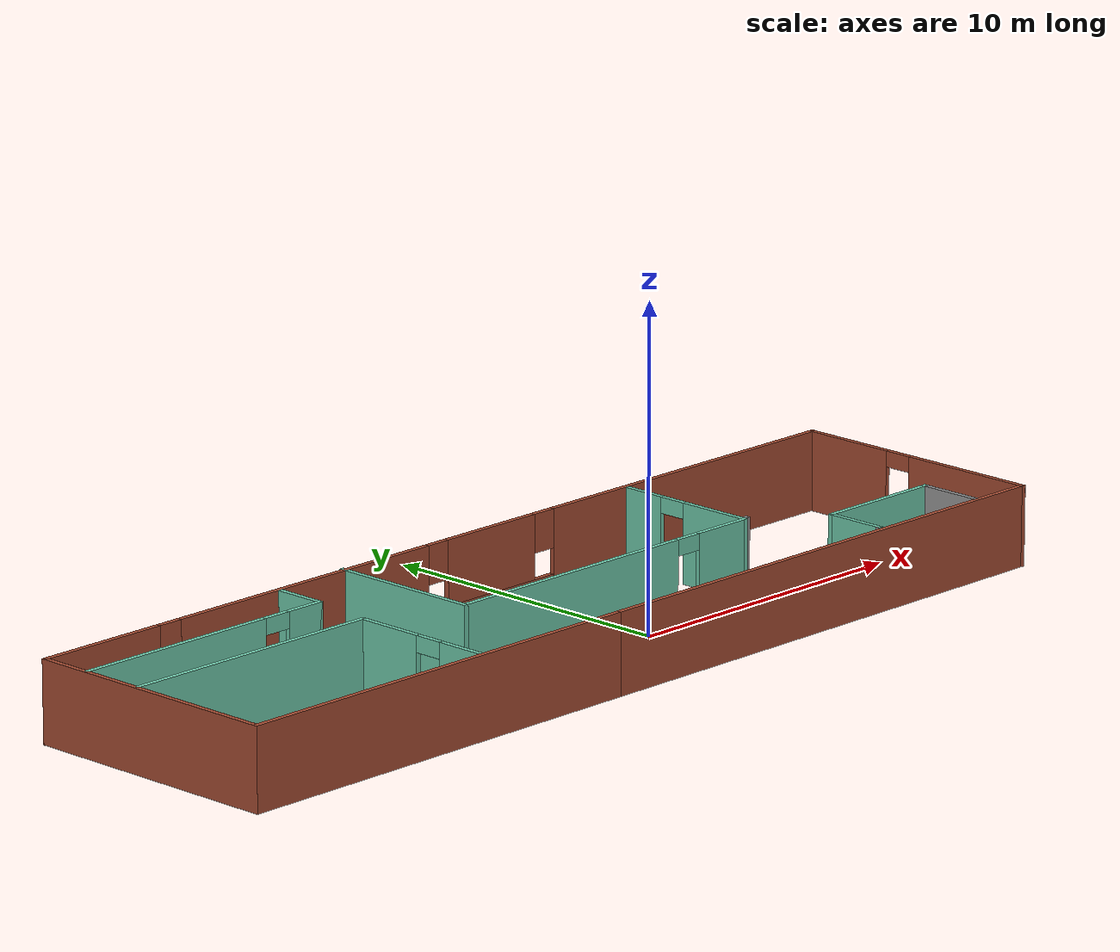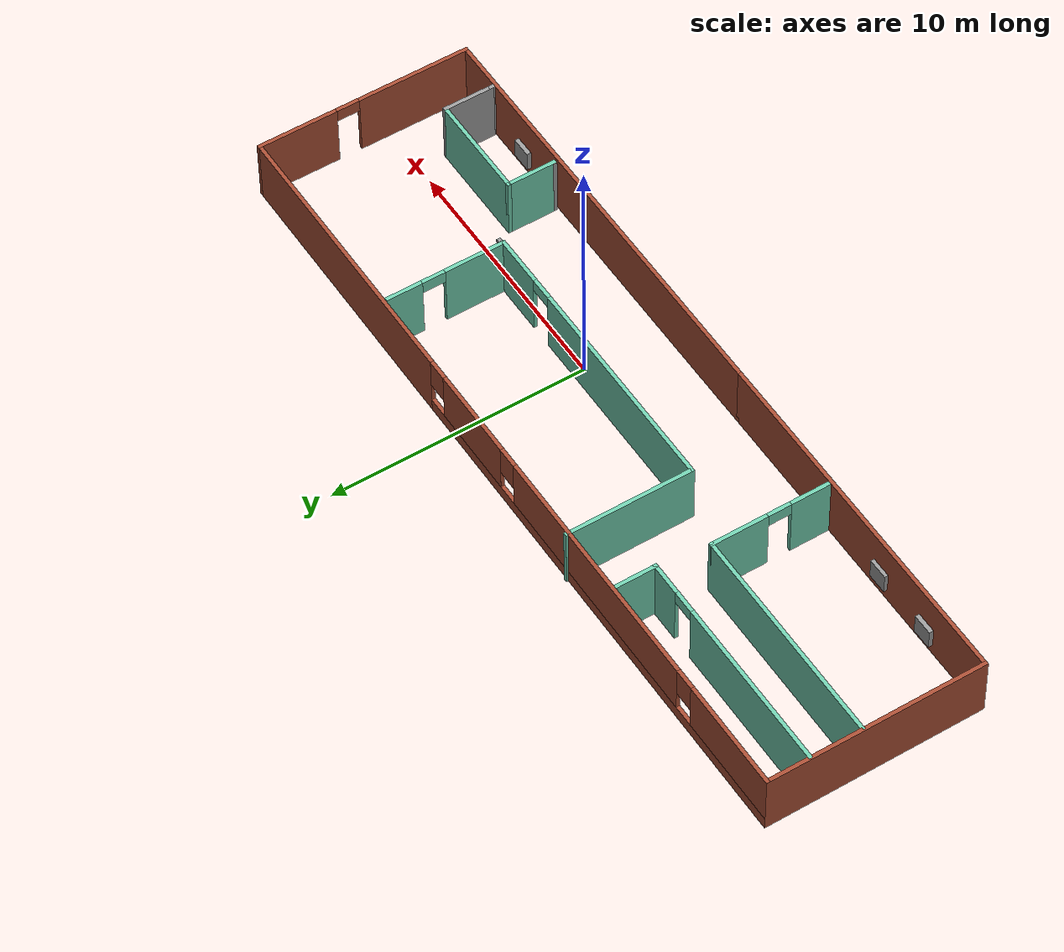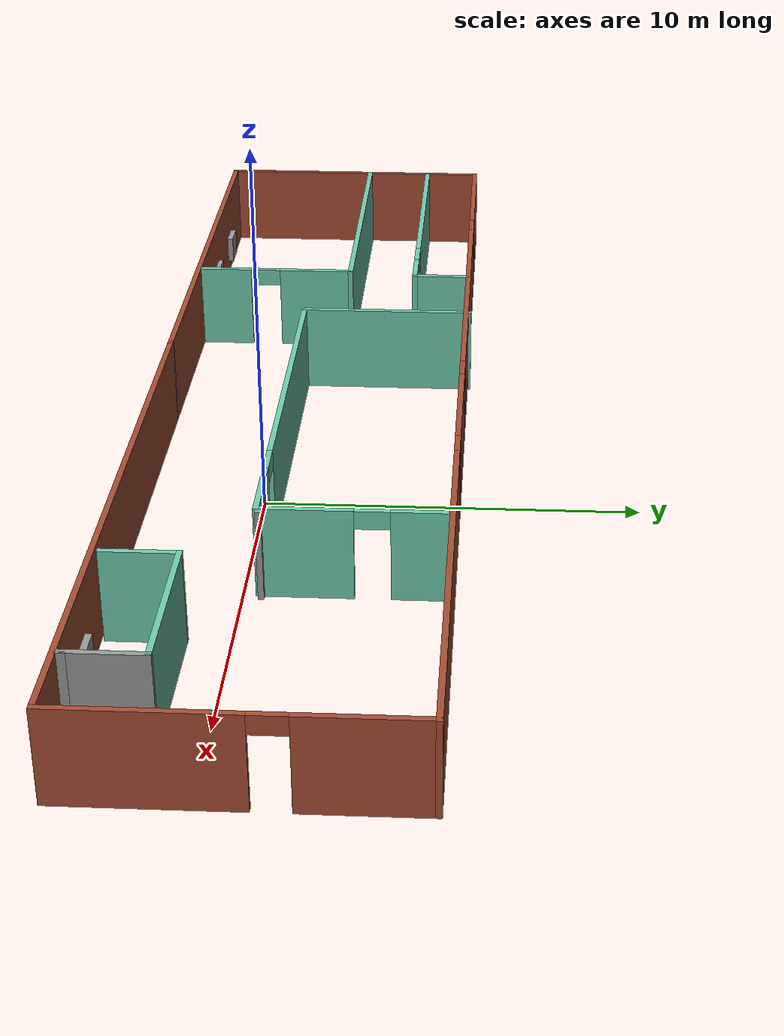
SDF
<?xml version='1.0'?>
<sdf version='1.6'>
  <model name='BuildingModel'>
    <pose frame=''>-3.00126 1.02792 0 0 -0 0</pose>
    <link name='Wall_27'>
      <collision name='Wall_27_Collision'>
        <geometry>
          <box>
            <size>0.15 0.15 2.5</size>
          </box>
        </geometry>
        <pose frame=''>0 0 1.25 0 -0 0</pose>
      </collision>
      <visual name='Wall_27_Visual'>
        <pose frame=''>0 0 1.25 0 -0 0</pose>
        <geometry>
          <box>
            <size>0.15 0.15 2.5</size>
          </box>
        </geometry>
        <material>
          <script>
            <uri>file://media/materials/scripts/gazebo.material</uri>
            <name>Gazebo/Grey</name>
          </script>
          <ambient>1 1 1 1</ambient>
        </material>
        <meta>
          <layer>0</layer>
        </meta>
      </visual>
      <pose frame=''>-1.675 -4.21418 0 0 -0 0</pose>
    </link>
    <link name='Wall_38'>
      <collision name='Wall_38_Collision'>
        <geometry>
          <box>
            <size>0.15 0.15 2.5</size>
          </box>
        </geometry>
        <pose frame=''>0 0 1.25 0 -0 0</pose>
      </collision>
      <visual name='Wall_38_Visual'>
        <pose frame=''>0 0 1.25 0 -0 0</pose>
        <geometry>
          <box>
            <size>0.15 0.15 2.5</size>
          </box>
        </geometry>
        <material>
          <script>
            <uri>file://media/materials/scripts/gazebo.material</uri>
            <name>Gazebo/Grey</name>
          </script>
          <ambient>1 1 1 1</ambient>
        </material>
        <meta>
          <layer>0</layer>
        </meta>
      </visual>
      <pose frame=''>7.62126 -0.567923 0 0 -0 0</pose>
    </link>
    <link name='Wall_45'>
      <collision name='Wall_45_Collision'>
        <geometry>
          <box>
            <size>17.5 0.15 2.5</size>
          </box>
        </geometry>
        <pose frame=''>0 0 1.25 0 -0 0</pose>
      </collision>
      <visual name='Wall_45_Visual'>
        <pose frame=''>0 0 1.25 0 -0 0</pose>
        <geometry>
          <box>
            <size>17.5 0.15 2.5</size>
          </box>
        </geometry>
        <material>
          <script>
            <uri>file://media/materials/scripts/gazebo.material</uri>
            <name>Gazebo/Bricks</name>
          </script>
          <ambient>1 1 1 1</ambient>
        </material>
        <meta>
          <layer>0</layer>
        </meta>
      </visual>
      <pose frame=''>7 -4.21418 0 0 -0 0</pose>
    </link>
    <link name='Wall_46'>
      <pose frame=''>15.675 -0.039184 0 0 -0 1.5708</pose>
      <visual name='Wall_46_Visual_0'>
        <pose frame=''>-2.01527 0 1.25 0 -0 0</pose>
        <geometry>
          <box>
            <size>4.46946 0.15 2.5</size>
          </box>
        </geometry>
        <material>
          <script>
            <uri>file://media/materials/scripts/gazebo.material</uri>
            <name>Gazebo/Bricks</name>
          </script>
          <ambient>1 1 1 1</ambient>
        </material>
        <meta>
          <layer>0</layer>
        </meta>
      </visual>
      <collision name='Wall_46_Collision_0'>
        <geometry>
          <box>
            <size>4.46946 0.15 2.5</size>
          </box>
        </geometry>
        <pose frame=''>-2.01527 0 1.25 0 -0 0</pose>
      </collision>
      <visual name='Wall_46_Visual_1'>
        <pose frame=''>2.68473 0 1.25 0 -0 0</pose>
        <geometry>
          <box>
            <size>3.13054 0.15 2.5</size>
          </box>
        </geometry>
        <material>
          <script>
            <uri>file://media/materials/scripts/gazebo.material</uri>
            <name>Gazebo/Bricks</name>
          </script>
          <ambient>1 1 1 1</ambient>
        </material>
        <meta>
          <layer>0</layer>
        </meta>
      </visual>
      <collision name='Wall_46_Collision_1'>
        <geometry>
          <box>
            <size>3.13054 0.15 2.5</size>
          </box>
        </geometry>
        <pose frame=''>2.68473 0 1.25 0 -0 0</pose>
      </collision>
      <visual name='Wall_46_Visual_2'>
        <pose frame=''>0.669456 0 2.25 0 -0 0</pose>
        <geometry>
          <box>
            <size>0.9 0.15 0.5</size>
          </box>
        </geometry>
        <material>
          <script>
            <uri>file://media/materials/scripts/gazebo.material</uri>
            <name>Gazebo/Bricks</name>
          </script>
          <ambient>1 1 1 1</ambient>
        </material>
        <meta>
          <layer>0</layer>
        </meta>
      </visual>
      <collision name='Wall_46_Collision_2'>
        <geometry>
          <box>
            <size>0.9 0.15 0.5</size>
          </box>
        </geometry>
        <pose frame=''>0.669456 0 2.25 0 -0 0</pose>
      </collision>
    </link>
    <link name='Wall_47'>
      <pose frame=''>0 4.13582 0 0 -0 3.14159</pose>
      <visual name='Wall_47_Visual_0'>
        <pose frame=''>-10.0427 0 1.25 0 -0 0</pose>
        <geometry>
          <box>
            <size>11.4147 0.15 2.5</size>
          </box>
        </geometry>
        <material>
          <script>
            <uri>file://media/materials/scripts/gazebo.material</uri>
            <name>Gazebo/Bricks</name>
          </script>
          <ambient>1 1 1 1</ambient>
        </material>
        <meta>
          <layer>0</layer>
        </meta>
      </visual>
      <collision name='Wall_47_Collision_0'>
        <geometry>
          <box>
            <size>11.4147 0.15 2.5</size>
          </box>
        </geometry>
        <pose frame=''>-10.0427 0 1.25 0 -0 0</pose>
      </collision>
      <visual name='Wall_47_Visual_1'>
        <pose frame=''>5.70733 0 0.25 0 -0 0</pose>
        <geometry>
          <box>
            <size>20.0853 0.15 0.5</size>
          </box>
        </geometry>
        <material>
          <script>
            <uri>file://media/materials/scripts/gazebo.material</uri>
            <name>Gazebo/Bricks</name>
          </script>
          <ambient>1 1 1 1</ambient>
        </material>
        <meta>
          <layer>0</layer>
        </meta>
      </visual>
      <collision name='Wall_47_Collision_1'>
        <geometry>
          <box>
            <size>20.0853 0.15 0.5</size>
          </box>
        </geometry>
        <pose frame=''>5.70733 0 0.25 0 -0 0</pose>
      </collision>
      <visual name='Wall_47_Visual_2'>
        <pose frame=''>-1.74527 0 1.5 0 -0 0</pose>
        <geometry>
          <box>
            <size>3.58012 0.15 2</size>
          </box>
        </geometry>
        <material>
          <script>
            <uri>file://media/materials/scripts/gazebo.material</uri>
            <name>Gazebo/Bricks</name>
          </script>
          <ambient>1 1 1 1</ambient>
        </material>
        <meta>
          <layer>0</layer>
        </meta>
      </visual>
      <collision name='Wall_47_Collision_2'>
        <geometry>
          <box>
            <size>3.58012 0.15 2</size>
          </box>
        </geometry>
        <pose frame=''>-1.74527 0 1.5 0 -0 0</pose>
      </collision>
      <visual name='Wall_47_Visual_3'>
        <pose frame=''>5.73743 0 1.5 0 -0 0</pose>
        <geometry>
          <box>
            <size>9.78529 0.15 2</size>
          </box>
        </geometry>
        <material>
          <script>
            <uri>file://media/materials/scripts/gazebo.material</uri>
            <name>Gazebo/Bricks</name>
          </script>
          <ambient>1 1 1 1</ambient>
        </material>
        <meta>
          <layer>0</layer>
        </meta>
      </visual>
      <collision name='Wall_47_Collision_3'>
        <geometry>
          <box>
            <size>9.78529 0.15 2</size>
          </box>
        </geometry>
        <pose frame=''>5.73743 0 1.5 0 -0 0</pose>
      </collision>
      <visual name='Wall_47_Visual_4'>
        <pose frame=''>13.59 0 1.5 0 -0 0</pose>
        <geometry>
          <box>
            <size>4.31992 0.15 2</size>
          </box>
        </geometry>
        <material>
          <script>
            <uri>file://media/materials/scripts/gazebo.material</uri>
            <name>Gazebo/Bricks</name>
          </script>
          <ambient>1 1 1 1</ambient>
        </material>
        <meta>
          <layer>0</layer>
        </meta>
      </visual>
      <collision name='Wall_47_Collision_4'>
        <geometry>
          <box>
            <size>4.31992 0.15 2</size>
          </box>
        </geometry>
        <pose frame=''>13.59 0 1.5 0 -0 0</pose>
      </collision>
      <visual name='Wall_47_Visual_5'>
        <pose frame=''>-3.93533 0 1.9 0 -0 0</pose>
        <geometry>
          <box>
            <size>0.8 0.15 1.2</size>
          </box>
        </geometry>
        <material>
          <script>
            <uri>file://media/materials/scripts/gazebo.material</uri>
            <name>Gazebo/Bricks</name>
          </script>
          <ambient>1 1 1 1</ambient>
        </material>
        <meta>
          <layer>0</layer>
        </meta>
      </visual>
      <collision name='Wall_47_Collision_5'>
        <geometry>
          <box>
            <size>0.8 0.15 1.2</size>
          </box>
        </geometry>
        <pose frame=''>-3.93533 0 1.9 0 -0 0</pose>
      </collision>
      <visual name='Wall_47_Visual_6'>
        <pose frame=''>0.444786 0 1.9 0 -0 0</pose>
        <geometry>
          <box>
            <size>0.8 0.15 1.2</size>
          </box>
        </geometry>
        <material>
          <script>
            <uri>file://media/materials/scripts/gazebo.material</uri>
            <name>Gazebo/Bricks</name>
          </script>
          <ambient>1 1 1 1</ambient>
        </material>
        <meta>
          <layer>0</layer>
        </meta>
      </visual>
      <collision name='Wall_47_Collision_6'>
        <geometry>
          <box>
            <size>0.8 0.15 1.2</size>
          </box>
        </geometry>
        <pose frame=''>0.444786 0 1.9 0 -0 0</pose>
      </collision>
      <visual name='Wall_47_Visual_7'>
        <pose frame=''>11.0301 0 1.9 0 -0 0</pose>
        <geometry>
          <box>
            <size>0.8 0.15 1.2</size>
          </box>
        </geometry>
        <material>
          <script>
            <uri>file://media/materials/scripts/gazebo.material</uri>
            <name>Gazebo/Bricks</name>
          </script>
          <ambient>1 1 1 1</ambient>
        </material>
        <meta>
          <layer>0</layer>
        </meta>
      </visual>
      <collision name='Wall_47_Collision_7'>
        <geometry>
          <box>
            <size>0.8 0.15 1.2</size>
          </box>
        </geometry>
        <pose frame=''>11.0301 0 1.9 0 -0 0</pose>
      </collision>
    </link>
    <link name='Wall_48'>
      <collision name='Wall_48_Collision'>
        <geometry>
          <box>
            <size>8.5 0.15 2.5</size>
          </box>
        </geometry>
        <pose frame=''>0 0 1.25 0 -0 0</pose>
      </collision>
      <visual name='Wall_48_Visual'>
        <pose frame=''>0 0 1.25 0 -0 0</pose>
        <geometry>
          <box>
            <size>8.5 0.15 2.5</size>
          </box>
        </geometry>
        <material>
          <script>
            <uri>file://media/materials/scripts/gazebo.material</uri>
            <name>Gazebo/Bricks</name>
          </script>
          <ambient>1 1 1 1</ambient>
        </material>
        <meta>
          <layer>0</layer>
        </meta>
      </visual>
      <pose frame=''>-15.675 -0.039184 0 0 0 -1.5708</pose>
    </link>
    <link name='Wall_49'>
      <collision name='Wall_49_Collision'>
        <geometry>
          <box>
            <size>14.15 0.15 2.5</size>
          </box>
        </geometry>
        <pose frame=''>0 0 1.25 0 -0 0</pose>
      </collision>
      <visual name='Wall_49_Visual'>
        <pose frame=''>0 0 1.25 0 -0 0</pose>
        <geometry>
          <box>
            <size>14.15 0.15 2.5</size>
          </box>
        </geometry>
        <material>
          <script>
            <uri>file://media/materials/scripts/gazebo.material</uri>
            <name>Gazebo/Bricks</name>
          </script>
          <ambient>1 1 1 1</ambient>
        </material>
        <meta>
          <layer>0</layer>
        </meta>
      </visual>
      <pose frame=''>-8.675 -4.21418 0 0 -0 0</pose>
    </link>
    <link name='Wall_51'>
      <pose frame=''>-11.2005 2.49243 0 0 -0 0</pose>
      <visual name='Wall_51_Visual_0'>
        <pose frame=''>-1.11223 0 1.25 0 -0 0</pose>
        <geometry>
          <box>
            <size>6.77554 0.15 2.5</size>
          </box>
        </geometry>
        <material>
          <script>
            <uri>file://media/materials/scripts/gazebo.material</uri>
            <name>Gazebo/Grey</name>
          </script>
          <ambient>0.435294 0.796078 0.67451 1</ambient>
        </material>
        <meta>
          <layer>0</layer>
        </meta>
      </visual>
      <collision name='Wall_51_Collision_0'>
        <geometry>
          <box>
            <size>6.77554 0.15 2.5</size>
          </box>
        </geometry>
        <pose frame=''>-1.11223 0 1.25 0 -0 0</pose>
      </collision>
      <visual name='Wall_51_Visual_1'>
        <pose frame=''>3.83777 0 1.25 0 -0 0</pose>
        <geometry>
          <box>
            <size>1.32446 0.15 2.5</size>
          </box>
        </geometry>
        <material>
          <script>
            <uri>file://media/materials/scripts/gazebo.material</uri>
            <name>Gazebo/Grey</name>
          </script>
          <ambient>0.435294 0.796078 0.67451 1</ambient>
        </material>
        <meta>
          <layer>0</layer>
        </meta>
      </visual>
      <collision name='Wall_51_Collision_1'>
        <geometry>
          <box>
            <size>1.32446 0.15 2.5</size>
          </box>
        </geometry>
        <pose frame=''>3.83777 0 1.25 0 -0 0</pose>
      </collision>
      <visual name='Wall_51_Visual_2'>
        <pose frame=''>2.72554 0 2.25 0 -0 0</pose>
        <geometry>
          <box>
            <size>0.9 0.15 0.5</size>
          </box>
        </geometry>
        <material>
          <script>
            <uri>file://media/materials/scripts/gazebo.material</uri>
            <name>Gazebo/Grey</name>
          </script>
          <ambient>0.435294 0.796078 0.67451 1</ambient>
        </material>
        <meta>
          <layer>0</layer>
        </meta>
      </visual>
      <collision name='Wall_51_Collision_2'>
        <geometry>
          <box>
            <size>0.9 0.15 0.5</size>
          </box>
        </geometry>
        <pose frame=''>2.72554 0 2.25 0 -0 0</pose>
      </collision>
    </link>
    <link name='Wall_52'>
      <collision name='Wall_52_Collision'>
        <geometry>
          <box>
            <size>1.75 0.15 2.5</size>
          </box>
        </geometry>
        <pose frame=''>0 0 1.25 0 -0 0</pose>
      </collision>
      <visual name='Wall_52_Visual'>
        <pose frame=''>0 0 1.25 0 -0 0</pose>
        <geometry>
          <box>
            <size>1.75 0.15 2.5</size>
          </box>
        </geometry>
        <material>
          <script>
            <uri>file://media/materials/scripts/gazebo.material</uri>
            <name>Gazebo/Grey</name>
          </script>
          <ambient>0.435294 0.796078 0.67451 1</ambient>
        </material>
        <meta>
          <layer>0</layer>
        </meta>
      </visual>
      <pose frame=''>-6.77554 3.29243 0 0 -0 1.5708</pose>
    </link>
    <link name='Wall_54'>
      <collision name='Wall_54_Collision'>
        <geometry>
          <box>
            <size>8.75 0.15 2.5</size>
          </box>
        </geometry>
        <pose frame=''>0 0 1.25 0 -0 0</pose>
      </collision>
      <visual name='Wall_54_Visual'>
        <pose frame=''>0 0 1.25 0 -0 0</pose>
        <geometry>
          <box>
            <size>8.75 0.15 2.5</size>
          </box>
        </geometry>
        <material>
          <script>
            <uri>file://media/materials/scripts/gazebo.material</uri>
            <name>Gazebo/Grey</name>
          </script>
          <ambient>0.435294 0.796078 0.67451 1</ambient>
        </material>
        <meta>
          <layer>0</layer>
        </meta>
      </visual>
      <pose frame=''>-11.3261 0.492271 0 0 -0 0</pose>
    </link>
    <link name='Wall_55'>
      <pose frame=''>-7.02613 -1.80773 0 0 0 -1.5708</pose>
      <visual name='Wall_55_Visual_0'>
        <pose frame=''>-1.24835 0 1.25 0 -0 0</pose>
        <geometry>
          <box>
            <size>2.2533 0.15 2.5</size>
          </box>
        </geometry>
        <material>
          <script>
            <uri>file://media/materials/scripts/gazebo.material</uri>
            <name>Gazebo/Grey</name>
          </script>
          <ambient>0.435294 0.796078 0.67451 1</ambient>
        </material>
        <meta>
          <layer>0</layer>
        </meta>
      </visual>
      <collision name='Wall_55_Collision_0'>
        <geometry>
          <box>
            <size>2.2533 0.15 2.5</size>
          </box>
        </geometry>
        <pose frame=''>-1.24835 0 1.25 0 -0 0</pose>
      </collision>
      <visual name='Wall_55_Visual_1'>
        <pose frame=''>1.57665 0 1.25 0 -0 0</pose>
        <geometry>
          <box>
            <size>1.5967 0.15 2.5</size>
          </box>
        </geometry>
        <material>
          <script>
            <uri>file://media/materials/scripts/gazebo.material</uri>
            <name>Gazebo/Grey</name>
          </script>
          <ambient>0.435294 0.796078 0.67451 1</ambient>
        </material>
        <meta>
          <layer>0</layer>
        </meta>
      </visual>
      <collision name='Wall_55_Collision_1'>
        <geometry>
          <box>
            <size>1.5967 0.15 2.5</size>
          </box>
        </geometry>
        <pose frame=''>1.57665 0 1.25 0 -0 0</pose>
      </collision>
      <visual name='Wall_55_Visual_2'>
        <pose frame=''>0.328301 0 2.25 0 -0 0</pose>
        <geometry>
          <box>
            <size>0.9 0.15 0.5</size>
          </box>
        </geometry>
        <material>
          <script>
            <uri>file://media/materials/scripts/gazebo.material</uri>
            <name>Gazebo/Grey</name>
          </script>
          <ambient>0.435294 0.796078 0.67451 1</ambient>
        </material>
        <meta>
          <layer>0</layer>
        </meta>
      </visual>
      <collision name='Wall_55_Collision_2'>
        <geometry>
          <box>
            <size>0.9 0.15 0.5</size>
          </box>
        </geometry>
        <pose frame=''>0.328301 0 2.25 0 -0 0</pose>
      </collision>
    </link>
    <link name='Wall_57'>
      <collision name='Wall_57_Collision'>
        <geometry>
          <box>
            <size>5 0.15 2.5</size>
          </box>
        </geometry>
        <pose frame=''>0 0 1.25 0 -0 0</pose>
      </collision>
      <visual name='Wall_57_Visual'>
        <pose frame=''>0 0 1.25 0 -0 0</pose>
        <geometry>
          <box>
            <size>5 0.15 2.5</size>
          </box>
        </geometry>
        <material>
          <script>
            <uri>file://media/materials/scripts/gazebo.material</uri>
            <name>Gazebo/Grey</name>
          </script>
          <ambient>0.435294 0.796078 0.67451 1</ambient>
        </material>
        <meta>
          <layer>0</layer>
        </meta>
      </visual>
      <pose frame=''>-4.13473 1.78918 0 0 0 -1.5708</pose>
    </link>
    <link name='Wall_58'>
      <pose frame=''>1.66527 -0.635816 0 0 -0 0</pose>
      <visual name='Wall_58_Visual_0'>
        <pose frame=''>-1.47995 0 1.25 0 -0 0</pose>
        <geometry>
          <box>
            <size>8.79009 0.15 2.5</size>
          </box>
        </geometry>
        <material>
          <script>
            <uri>file://media/materials/scripts/gazebo.material</uri>
            <name>Gazebo/Grey</name>
          </script>
          <ambient>0.435294 0.796078 0.67451 1</ambient>
        </material>
        <meta>
          <layer>0</layer>
        </meta>
      </visual>
      <collision name='Wall_58_Collision_0'>
        <geometry>
          <box>
            <size>8.79009 0.15 2.5</size>
          </box>
        </geometry>
        <pose frame=''>-1.47995 0 1.25 0 -0 0</pose>
      </collision>
      <visual name='Wall_58_Visual_1'>
        <pose frame=''>4.84504 0 1.25 0 -0 0</pose>
        <geometry>
          <box>
            <size>2.05991 0.15 2.5</size>
          </box>
        </geometry>
        <material>
          <script>
            <uri>file://media/materials/scripts/gazebo.material</uri>
            <name>Gazebo/Grey</name>
          </script>
          <ambient>0.435294 0.796078 0.67451 1</ambient>
        </material>
        <meta>
          <layer>0</layer>
        </meta>
      </visual>
      <collision name='Wall_58_Collision_1'>
        <geometry>
          <box>
            <size>2.05991 0.15 2.5</size>
          </box>
        </geometry>
        <pose frame=''>4.84504 0 1.25 0 -0 0</pose>
      </collision>
      <visual name='Wall_58_Visual_2'>
        <pose frame=''>3.36509 0 2.25 0 -0 0</pose>
        <geometry>
          <box>
            <size>0.9 0.15 0.5</size>
          </box>
        </geometry>
        <material>
          <script>
            <uri>file://media/materials/scripts/gazebo.material</uri>
            <name>Gazebo/Grey</name>
          </script>
          <ambient>0.435294 0.796078 0.67451 1</ambient>
        </material>
        <meta>
          <layer>0</layer>
        </meta>
      </visual>
      <collision name='Wall_58_Collision_2'>
        <geometry>
          <box>
            <size>0.9 0.15 0.5</size>
          </box>
        </geometry>
        <pose frame=''>3.36509 0 2.25 0 -0 0</pose>
      </collision>
    </link>
    <link name='Wall_59'>
      <pose frame=''>7.46527 1.66418 0 0 -0 1.5708</pose>
      <visual name='Wall_59_Visual_0'>
        <pose frame=''>-1.15297 0 1.25 0 -0 0</pose>
        <geometry>
          <box>
            <size>2.44407 0.15 2.5</size>
          </box>
        </geometry>
        <material>
          <script>
            <uri>file://media/materials/scripts/gazebo.material</uri>
            <name>Gazebo/Grey</name>
          </script>
          <ambient>0.435294 0.796078 0.67451 1</ambient>
        </material>
        <meta>
          <layer>0</layer>
        </meta>
      </visual>
      <collision name='Wall_59_Collision_0'>
        <geometry>
          <box>
            <size>2.44407 0.15 2.5</size>
          </box>
        </geometry>
        <pose frame=''>-1.15297 0 1.25 0 -0 0</pose>
      </collision>
      <visual name='Wall_59_Visual_1'>
        <pose frame=''>1.67203 0 1.25 0 -0 0</pose>
        <geometry>
          <box>
            <size>1.40593 0.15 2.5</size>
          </box>
        </geometry>
        <material>
          <script>
            <uri>file://media/materials/scripts/gazebo.material</uri>
            <name>Gazebo/Grey</name>
          </script>
          <ambient>0.435294 0.796078 0.67451 1</ambient>
        </material>
        <meta>
          <layer>0</layer>
        </meta>
      </visual>
      <collision name='Wall_59_Collision_1'>
        <geometry>
          <box>
            <size>1.40593 0.15 2.5</size>
          </box>
        </geometry>
        <pose frame=''>1.67203 0 1.25 0 -0 0</pose>
      </collision>
      <visual name='Wall_59_Visual_2'>
        <pose frame=''>0.51907 0 2.25 0 -0 0</pose>
        <geometry>
          <box>
            <size>0.9 0.15 0.5</size>
          </box>
        </geometry>
        <material>
          <script>
            <uri>file://media/materials/scripts/gazebo.material</uri>
            <name>Gazebo/Grey</name>
          </script>
          <ambient>0.435294 0.796078 0.67451 1</ambient>
        </material>
        <meta>
          <layer>0</layer>
        </meta>
      </visual>
      <collision name='Wall_59_Collision_2'>
        <geometry>
          <box>
            <size>0.9 0.15 0.5</size>
          </box>
        </geometry>
        <pose frame=''>0.51907 0 2.25 0 -0 0</pose>
      </collision>
    </link>
    <link name='Wall_61'>
      <collision name='Wall_61_Collision'>
        <geometry>
          <box>
            <size>2 0.15 2.5</size>
          </box>
        </geometry>
        <pose frame=''>0 0 1.25 0 -0 0</pose>
      </collision>
      <visual name='Wall_61_Visual'>
        <pose frame=''>0 0 1.25 0 -0 0</pose>
        <geometry>
          <box>
            <size>2 0.15 2.5</size>
          </box>
        </geometry>
        <material>
          <script>
            <uri>file://media/materials/scripts/gazebo.material</uri>
            <name>Gazebo/Grey</name>
          </script>
          <ambient>0.435294 0.796078 0.67451 1</ambient>
        </material>
        <meta>
          <layer>0</layer>
        </meta>
      </visual>
      <pose frame=''>9.58983 -3.07817 0 0 -0 1.5708</pose>
    </link>
    <link name='Wall_62'>
      <collision name='Wall_62_Collision'>
        <geometry>
          <box>
            <size>4.25 0.15 2.5</size>
          </box>
        </geometry>
        <pose frame=''>0 0 1.25 0 -0 0</pose>
      </collision>
      <visual name='Wall_62_Visual'>
        <pose frame=''>0 0 1.25 0 -0 0</pose>
        <geometry>
          <box>
            <size>4.25 0.15 2.5</size>
          </box>
        </geometry>
        <material>
          <script>
            <uri>file://media/materials/scripts/gazebo.material</uri>
            <name>Gazebo/Grey</name>
          </script>
          <ambient>0.435294 0.796078 0.67451 1</ambient>
        </material>
        <meta>
          <layer>0</layer>
        </meta>
      </visual>
      <pose frame=''>11.6398 -2.15317 0 0 -0 0</pose>
    </link>
    <link name='Wall_63'>
      <collision name='Wall_63_Collision'>
        <geometry>
          <box>
            <size>2 0.15 2.5</size>
          </box>
        </geometry>
        <pose frame=''>0 0 1.25 0 -0 0</pose>
      </collision>
      <visual name='Wall_63_Visual'>
        <pose frame=''>0 0 1.25 0 -0 0</pose>
        <geometry>
          <box>
            <size>2 0.15 2.5</size>
          </box>
        </geometry>
        <material>
          <script>
            <uri>file://media/materials/scripts/gazebo.material</uri>
            <name>Gazebo/Grey</name>
          </script>
          <ambient>1 1 1 1</ambient>
        </material>
        <meta>
          <layer>0</layer>
        </meta>
      </visual>
      <pose frame=''>13.6898 -3.07817 0 0 0 -1.5708</pose>
    </link>
    <link name='Wall_65'>
      <collision name='Wall_65_Collision'>
        <geometry>
          <box>
            <size>0.25 0.15 2.5</size>
          </box>
        </geometry>
        <pose frame=''>0 0 1.25 0 -0 0</pose>
      </collision>
      <visual name='Wall_65_Visual'>
        <pose frame=''>0 0 1.25 0 -0 0</pose>
        <geometry>
          <box>
            <size>0.25 0.15 2.5</size>
          </box>
        </geometry>
        <material>
          <script>
            <uri>file://media/materials/scripts/gazebo.material</uri>
            <name>Gazebo/Grey</name>
          </script>
          <ambient>1 1 1 1</ambient>
        </material>
        <meta>
          <layer>0</layer>
        </meta>
      </visual>
      <pose frame=''>13.6898 -4.05317 0 0 0 -1.5708</pose>
    </link>
    <link name='Wall_67'>
      <collision name='Wall_67_Collision'>
        <geometry>
          <box>
            <size>0.15 0.15 2.5</size>
          </box>
        </geometry>
        <pose frame=''>0 0 1.25 0 -0 0</pose>
      </collision>
      <visual name='Wall_67_Visual'>
        <pose frame=''>0 0 1.25 0 -0 0</pose>
        <geometry>
          <box>
            <size>0.15 0.15 2.5</size>
          </box>
        </geometry>
        <material>
          <script>
            <uri>file://media/materials/scripts/gazebo.material</uri>
            <name>Gazebo/Grey</name>
          </script>
          <ambient>1 1 1 1</ambient>
        </material>
        <meta>
          <layer>0</layer>
        </meta>
      </visual>
      <pose frame=''>9.58983 -4.00317 0 0 -0 0</pose>
    </link>
    <link name='Window_4'>
      <collision name='Window_4_Collision'>
        <geometry>
          <box>
            <size>0.8 0.17 0.8</size>
          </box>
        </geometry>
        <pose frame=''>0 0 0.4 0 -0 0</pose>
      </collision>
      <visual name='Window_4_Visual'>
        <pose frame=''>0 0 0.4 0 -0 0</pose>
        <geometry>
          <box>
            <size>0.8 0.17 0.8</size>
          </box>
        </geometry>
        <material>
          <script>
            <uri>file://media/materials/scripts/gazebo.material</uri>
            <name>Gazebo/Grey</name>
          </script>
        </material>
      </visual>
      <pose frame=''>-12.6726 -4.02191 0.5 0 -0 0</pose>
    </link>
    <link name='Window_5'>
      <collision name='Window_5_Collision'>
        <geometry>
          <box>
            <size>0.8 0.17 0.8</size>
          </box>
        </geometry>
        <pose frame=''>0 0 0.4 0 -0 0</pose>
      </collision>
      <visual name='Window_5_Visual'>
        <pose frame=''>0 0 0.4 0 -0 0</pose>
        <geometry>
          <box>
            <size>0.8 0.17 0.8</size>
          </box>
        </geometry>
        <material>
          <script>
            <uri>file://media/materials/scripts/gazebo.material</uri>
            <name>Gazebo/Grey</name>
          </script>
        </material>
      </visual>
      <pose frame=''>-10.0567 -4.08275 0.5 0 -0 0</pose>
    </link>
    <link name='Window_6'>
      <collision name='Window_6_Collision'>
        <geometry>
          <box>
            <size>0.8 0.17 0.8</size>
          </box>
        </geometry>
        <pose frame=''>0 0 0.4 0 -0 0</pose>
      </collision>
      <visual name='Window_6_Visual'>
        <pose frame=''>0 0 0.4 0 -0 0</pose>
        <geometry>
          <box>
            <size>0.8 0.17 0.8</size>
          </box>
        </geometry>
        <material>
          <script>
            <uri>file://media/materials/scripts/gazebo.material</uri>
            <name>Gazebo/Grey</name>
          </script>
        </material>
      </visual>
      <pose frame=''>11.6614 -4.02191 0.5 0 -0 0</pose>
    </link>
    <static>1</static>
  </model>
</sdf>
